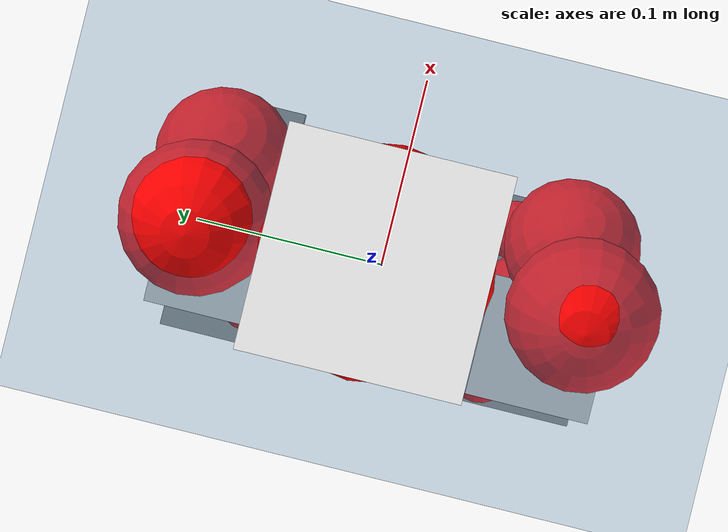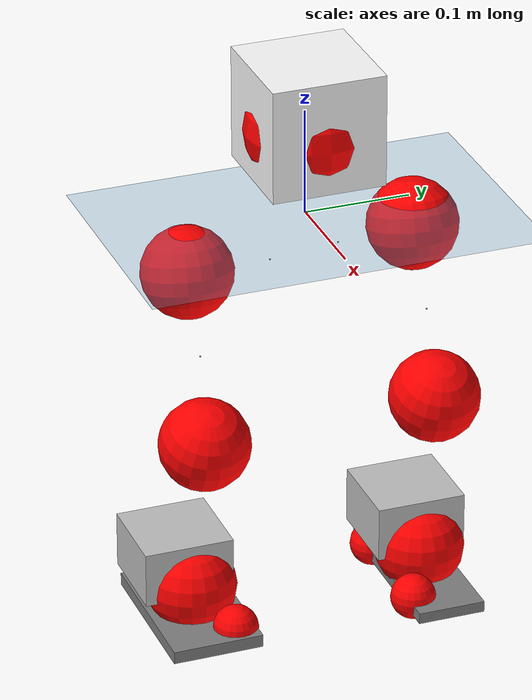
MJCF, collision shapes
<mujoco model="pi_12dof_release_v1">
  <compiler angle="radian" assetdir="assets" balanceinertia="true" inertiafromgeom="false"/>

  <option timestep="0.005" density="1.2" viscosity="2e-05"/>

  <size nkey="1"/>

  <visual>
    <quality shadowsize="8192"/>
    <map shadowclip="0.5"/>
  </visual>

  <default>
    <default class="/">
      <joint armature="0.01" damping="0.01" frictionloss="0.01"/>
      <geom contype="0" conaffinity="0" group="1" solref="-1000 -80"/>
      <site size="0.01 0.005 0.005" group="5"/>
      <general forcelimited="true" biastype="affine" gainprm="20" biasprm="0 -20 -0.5"/>
      <default class="foot">
        <geom size="0.0845 0.036 0.005" type="box" condim="6" group="4" priority="1" friction="0.9 0.2 0.2" solimp="0.015 1 0.005"/>
      </default>
      <default class="reward_collision_sphere">
        <geom group="5" rgba="1 0 0 1"/>
      </default>
    </default>
  </default>

  <asset>
    <texture type="skybox" colorspace="auto" name="//unnamed_texture_0" builtin="gradient" rgb1="0.95 0.95 0.95" rgb2="0.95 0.95 0.95" width="100" height="600"/>
    <texture type="2d" colorspace="auto" name="texplane" builtin="checker" rgb1="0.345 0.575 0.748" rgb2="0.345 0.575 0.748" markrgb="1 1 1" width="512" height="512"/>
    <material name="MatPlane" class="/" texture="texplane" texuniform="true" texrepeat="2 2" specular="0.9"/>
    <mesh name="baselink_1" class="/" file="baselink_1.STL"/>
    <mesh name="r_hip_pitch_link" class="/" file="r_hip_pitch_link.STL"/>
    <mesh name="r_hip_roll_link" class="/" file="r_hip_roll_link.STL"/>
    <mesh name="r_thigh_link" class="/" file="r_thigh_link.STL"/>
    <mesh name="r_calf_link" class="/" file="r_calf_link.STL"/>
    <mesh name="r_ankle_pitch_link" class="/" file="r_ankle_pitch_link.STL"/>
    <mesh name="r_ankle_roll_link" class="/" file="r_ankle_roll_link.STL"/>
    <mesh name="l_hip_pitch_link" class="/" file="l_hip_pitch_link.STL"/>
    <mesh name="l_hip_roll_link" class="/" file="l_hip_roll_link.STL"/>
    <mesh name="l_thigh_link" class="/" file="l_thigh_link.STL"/>
    <mesh name="l_calf_link" class="/" file="l_calf_link.STL"/>
    <mesh name="l_ankle_pitch_link" class="/" file="l_ankle_pitch_link.STL"/>
    <mesh name="l_ankle_roll_link" class="/" file="l_ankle_roll_link.STL"/>
  </asset>

  <worldbody>
    <geom name="floor" class="/" size="100 100 0.125" type="plane" group="0" material="MatPlane"/>
    <light name="toplight_shadow" class="/" pos="0 0 5" dir="0.0990148 0.0990148 -0.990148" type="directional" ambient="0.04 0.04 0.04" diffuse="0.55 0.55 0.55" specular="0.12 0.12 0.12"/>
    <light name="toplight_fill" class="/" pos="0 0 5" dir="0.0990148 0.0990148 -0.990148" type="directional" castshadow="false" ambient="0.04 0.04 0.04" diffuse="0.3 0.3 0.3" specular="0.08 0.08 0.08"/>
    <body name="trunk" pos="0.000728769 0.00279771 0.00187659" quat="1 -6.20646e-05 3.5896e-05 9.21801e-06">
      <inertial pos="0.00392221 0.0033848 0.0471779" quat="0.688203 0.0295055 0.0379215 0.723925" mass="2.69749" diaginertia="0.00271111 0.0297979 0.00897025"/>
      <joint name="//unnamed_joint_0" type="free"/>
      <geom name="//unnamed_geom_1" class="/" type="mesh" density="0" rgba="1 1 1 1" mesh="baselink_1"/>
      <geom name="//unnamed_geom_2" class="/" size="0.0535669 0.0535669 0.0535669" pos="0 0 0.0932019" type="box" rgba="1 1 1 1"/>
      <geom name="//unnamed_geom_3" class="reward_collision_sphere" size="0.0589236" pos="0 0 0.0815517"/>
      <site name="imu" class="/" pos="-0.0124776 -0.00226863 0.013916" size="0.0107134"/>
      <camera name="track" class="/" pos="0 -2.5478 0" quat="0.707107 0.707107 0 0" mode="trackcom"/>
      <camera name="ego_camera" class="/" pos="0.0581316 0 0.209704" quat="-0.5 -0.5 0.5 0.5"/>
      <body name="r_hip_pitch_link" pos="-0.00103448 -0.0363595 -0.0435915" quat="0.992224 0.000654316 -0.124453 -0.00146421">
        <inertial pos="-0.000564165 -0.0700796 -4.58619e-06" quat="-0.0284393 0.708618 -0.0279392 0.704465" mass="0.467716" diaginertia="3.03849e-05 0.000350112 0.000175229"/>
        <joint name="r_hip_pitch_joint" class="/" pos="0 0 0" axis="-0.00456884 -0.999988 0.00195442" stiffness="0.00332318" range="-1.76423 1.25491" armature="0.0108493" damping="0.00984942" frictionloss="0.00954634"/>
        <geom name="//unnamed_geom_4" class="/" type="mesh" density="0" rgba="0.75294 0.75294 0.75294 1" mesh="r_hip_pitch_link"/>
        <geom name="//unnamed_geom_5" class="/" size="0.000535669 0.000535669 0.000535669" type="box" rgba="0.75294 0.75294 0.75294 1"/>
        <body name="r_hip_roll_link" pos="0.000921791 -0.0790999 0.00177456" quat="1 -0.000888088 0.000435941 5.49595e-05">
          <inertial pos="-0.00325643 -0.000451689 -0.0717654" quat="0.718466 -0.0757676 -0.0714784 0.687719" mass="0.478641" diaginertia="9.72301e-05 0.000942778 0.000273307"/>
          <joint name="r_hip_roll_joint" class="/" pos="0 0 0" axis="-0.999978 -0.00597655 -0.00304358" stiffness="0.00899711" range="-0.12455 0.427979" armature="0.0115569" damping="0.0544909" frictionloss="0.009907"/>
          <geom name="//unnamed_geom_6" class="/" type="mesh" density="0" rgba="0.75294 0.75294 0.75294 1" mesh="r_hip_roll_link"/>
          <geom name="//unnamed_geom_7" class="/" size="0.000535669 0.000535669 0.000535669" type="box" rgba="0.75294 0.75294 0.75294 1"/>
          <geom name="//unnamed_geom_8" class="reward_collision_sphere" size="0.0428535"/>
          <body name="r_thigh_link" pos="-0.00136278 0.00513526 -0.0796299" quat="1 6.10493e-05 -1.9568e-05 -5.90573e-05">
            <inertial pos="-0.00123725 0.00113597 -0.0490722" quat="0.739272 0.673403 0.000847274 -0.00211269" mass="0.133624" diaginertia="3.57828e-05 0.000292843 0.000132316"/>
            <joint name="r_thigh_joint" class="/" pos="0 0 0" axis="0.0077397 -0.00137821 -0.999969" stiffness="0.00279502" range="-0.26439 0.587382" armature="0.0102691" damping="0.00879346" frictionloss="0.0105545"/>
            <geom name="//unnamed_geom_9" class="/" type="mesh" density="0" rgba="0.75294 0.75294 0.75294 1" mesh="r_thigh_link"/>
            <geom name="//unnamed_geom_10" class="/" size="0.000535669 0.000535669 0.000535669" type="box" rgba="0.75294 0.75294 0.75294 1"/>
            <body name="r_calf_link" pos="0.000287252 -0.00374839 -0.0816687" quat="0.947735 0.00031704 0.319057 4.63889e-05">
              <inertial pos="-0.00178914 0.000976983 -0.0791532" quat="0.999946 0.000882022 0.000422669 0.0103696" mass="1.07691" diaginertia="0.000983994 0.0130735 0.000368113"/>
              <joint name="r_calf_joint" class="/" pos="0 0 0" axis="-0.00248759 -0.999997 -7.53396e-05" range="-1.79076 0.647181" armature="0.00957714" damping="0.0035294" frictionloss="0.0108258"/>
              <geom name="//unnamed_geom_11" class="/" type="mesh" density="0" rgba="0.75294 0.75294 0.75294 1" mesh="r_calf_link"/>
              <geom name="//unnamed_geom_12" class="/" size="0.000535669 0.000535669 0.000535669" type="box" rgba="0.75294 0.75294 0.75294 1"/>
              <geom name="//unnamed_geom_13" class="reward_collision_sphere" size="0.0428535"/>
              <body name="r_ankle_pitch_link" pos="-0.00532294 -0.00657274 -0.164082" quat="0.980054 5.47205e-05 -0.198734 4.51744e-05">
                <inertial pos="0.00343551 0.0110386 -0.00216773" quat="0.0035112 0.705851 -0.00561133 0.708329" mass="0.201602" diaginertia="8.40432e-05 0.000713061 0.000241988"/>
                <joint name="r_ankle_pitch_joint" class="/" pos="0 0 0" axis="0.0270119 -0.999626 -0.00433382" stiffness="0.00789416" range="-1.29045 0.395474" armature="0.0113079" damping="0.00197826" frictionloss="0.00998198"/>
                <geom name="//unnamed_geom_14" class="/" type="mesh" density="0" rgba="0.75294 0.75294 0.75294 1" mesh="r_ankle_pitch_link"/>
                <geom name="//unnamed_geom_15" class="/" size="0.0417822 0.0428535 0.0267834" type="box" rgba="0.75294 0.75294 0.75294 1"/>
                <body name="r_ankle_roll_link" pos="0.0644758 0.00689654 0.0014187" quat="0.999998 -0.000407232 0.000562036 0.00190602">
                  <inertial pos="-0.0170297 -0.00047291 -0.0186153" quat="0.563347 0.430826 0.431272 0.557704" mass="0.655084" diaginertia="0.000326912 0.0034422 0.000623851"/>
                  <joint name="r_ankle_roll_joint" class="/" pos="0 0 0" axis="-0.999999 -0.00154164 0.000171455" range="-0.0283134 0.146358" armature="0.010829" damping="0" frictionloss="0.0106789"/>
                  <geom name="//unnamed_geom_16" class="/" type="mesh" density="0" rgba="0.75294 0.75294 0.75294 1" mesh="r_ankle_roll_link"/>
                  <geom name="//unnamed_geom_17" class="/" type="mesh" rgba="0.75294 0.75294 0.75294 1" mesh="r_ankle_roll_link"/>
                  <geom name="right_foot" class="foot" size="0.0756569 0.0433075 0.00602228" pos="-0.0395295 0 -0.051261"/>
                  <geom name="//unnamed_geom_19" class="reward_collision_sphere" size="0.0428535" pos="-0.0387544 0 -0.0233005"/>
                  <geom name="//unnamed_geom_20" class="reward_collision_sphere" size="0.0214268" pos="0.0116263 0.025478 -0.0466009"/>
                  <geom name="//unnamed_geom_21" class="reward_collision_sphere" size="0.0214268" pos="-0.0930106 0.025478 -0.0466009"/>
                  <site name="right_foot" class="foot" pos="-0.0395295 0 -0.051261" size="0.0107134"/>
                </body>
              </body>
            </body>
          </body>
        </body>
      </body>
      <body name="l_hip_pitch_link" pos="0.00118309 0.0283875 -0.0366112" quat="0.992214 -0.000757441 -0.124545 -0.000261494">
        <inertial pos="8.27654e-05 0.0727499 -0.000309929" quat="-0.0314011 0.701405 0.0276931 0.711532" mass="0.496333" diaginertia="3.59793e-05 0.000357799 0.000220335"/>
        <joint name="l_hip_pitch_joint" class="/" pos="0 0 0" axis="-0.00282155 0.99999 -0.003344" range="-1.25886 1.75535" armature="0.0101182" damping="0.0218548" frictionloss="0.00988478"/>
        <geom name="//unnamed_geom_22" class="/" type="mesh" density="0" rgba="0.75294 0.75294 0.75294 1" mesh="l_hip_pitch_link"/>
        <geom name="//unnamed_geom_23" class="/" size="0.000535669 0.000535669 0.000535669" type="box" rgba="0.75294 0.75294 0.75294 1"/>
        <body name="l_hip_roll_link" pos="0.000601366 0.0724606 0.00623559" quat="1 -0.00024027 0.000594449 -2.69242e-05">
          <inertial pos="0.00218117 -0.00178841 -0.0652945" quat="0.698713 -0.0744163 -0.0753816 0.707516" mass="0.443686" diaginertia="9.22739e-05 0.000957869 0.000273793"/>
          <joint name="l_hip_roll_joint" class="/" pos="0 0 0" axis="-0.99988 0.0131139 0.00820767" range="-0.392142 0.135256" armature="0.00889993" damping="0.0131972" frictionloss="0.0114233"/>
          <geom name="//unnamed_geom_24" class="/" type="mesh" density="0" rgba="0.75294 0.75294 0.75294 1" mesh="l_hip_roll_link"/>
          <geom name="//unnamed_geom_25" class="/" size="0.000535669 0.000535669 0.000535669" type="box" rgba="0.75294 0.75294 0.75294 1"/>
          <geom name="//unnamed_geom_26" class="reward_collision_sphere" size="0.0428535"/>
          <body name="l_thigh_link" pos="0.000365968 0.00678164 -0.0816512" quat="1 -0.000822608 0.00020581 -1.52166e-05">
            <inertial pos="-0.000157918 -0.00192499 -0.0585669" quat="0.673297 0.739351 0.00241675 -0.00506554" mass="0.135617" diaginertia="3.28057e-05 0.000309309 0.000122387"/>
            <joint name="l_thigh_joint" class="/" pos="0 0 0" axis="0.00148621 0.00125051 -0.999998" range="-0.558769 0.290416" armature="0.0113288" damping="0" frictionloss="0.0110213"/>
            <geom name="//unnamed_geom_27" class="/" type="mesh" density="0" rgba="0.75294 0.75294 0.75294 1" mesh="l_thigh_link"/>
            <geom name="//unnamed_geom_28" class="/" size="0.000535669 0.000535669 0.000535669" type="box" rgba="0.75294 0.75294 0.75294 1"/>
            <body name="l_calf_link" pos="-0.000196199 0.00102893 -0.0824437" quat="0.947699 -9.53536e-05 0.31916 0.00198305">
              <inertial pos="0.0023115 0.00101058 -0.0798384" quat="0.999947 0.00566696 0.00840377 -0.0016491" mass="1.00731" diaginertia="0.000947744 0.0118585 0.000348501"/>
              <joint name="l_calf_joint" class="/" pos="0 0 0" axis="0.00542792 0.999983 -0.00221737" range="-0.604885 1.63096" armature="0.0117313" damping="0.0177275" frictionloss="0.0115258"/>
              <geom name="//unnamed_geom_29" class="/" type="mesh" density="0" rgba="0.75294 0.75294 0.75294 1" mesh="l_calf_link"/>
              <geom name="//unnamed_geom_30" class="/" size="0.000535669 0.000535669 0.000535669" type="box" rgba="0.75294 0.75294 0.75294 1"/>
              <geom name="//unnamed_geom_31" class="reward_collision_sphere" size="0.0428535"/>
              <body name="l_ankle_pitch_link" pos="0.00140121 -0.00173615 -0.163293" quat="0.980132 0.000138035 -0.198332 -0.00228815">
                <inertial pos="0.00439969 0.00362796 -0.00059954" quat="-0.00794308 0.709334 0.0116311 0.704732" mass="0.221452" diaginertia="8.88549e-05 0.000757635 0.000258824"/>
                <joint name="l_ankle_pitch_joint" class="/" pos="0 0 0" axis="0.000182949 1 -1.989e-05" range="-0.446068 1.28042" armature="0.0117846" damping="0.0186733" frictionloss="0.0105849"/>
                <geom name="//unnamed_geom_32" class="/" type="mesh" density="0" rgba="0.75294 0.75294 0.75294 1" mesh="l_ankle_pitch_link"/>
                <geom name="//unnamed_geom_33" class="/" size="0.0417822 0.0428535 0.0267834" type="box" rgba="0.75294 0.75294 0.75294 1"/>
                <body name="l_ankle_roll_link" pos="0.0656575 0.00362253 -0.00274112" quat="1 -9.45816e-05 -0.000151051 0.000102057">
                  <inertial pos="-0.0256078 0.000256017 -0.0188368" quat="0.564945 0.429883 0.432546 0.555825" mass="0.624552" diaginertia="0.000296474 0.00336961 0.000624302"/>
                  <joint name="l_ankle_roll_joint" class="/" pos="0 0 0" axis="-0.999482 -0.0106858 -0.0303454" range="-0.279141 0.202734" armature="0.00810073" damping="0" frictionloss="0.0128026"/>
                  <geom name="//unnamed_geom_34" class="/" type="mesh" density="0" rgba="0.75294 0.75294 0.75294 1" mesh="l_ankle_roll_link"/>
                  <geom name="//unnamed_geom_35" class="/" type="mesh" rgba="0.75294 0.75294 0.75294 1" mesh="l_ankle_roll_link"/>
                  <geom name="left_foot" class="foot" size="0.084603 0.0324074 0.00531754" pos="-0.0395295 0 -0.051261"/>
                  <geom name="//unnamed_geom_37" class="reward_collision_sphere" size="0.0428535" pos="-0.0387544 0 -0.0233005"/>
                  <geom name="//unnamed_geom_38" class="reward_collision_sphere" size="0.0214268" pos="0.0116263 -0.025478 -0.0466009"/>
                  <geom name="//unnamed_geom_39" class="reward_collision_sphere" size="0.0214268" pos="-0.0930106 -0.025478 -0.0466009"/>
                  <site name="left_foot" class="foot" pos="-0.0395295 0 -0.051261" size="0.0107134"/>
                </body>
              </body>
            </body>
          </body>
        </body>
      </body>
    </body>
  </worldbody>

  <contact>
    <pair class="/" geom1="floor" geom2="right_foot" name="//unnamed_contact_1"/>
    <pair class="/" geom1="floor" geom2="left_foot" name="//unnamed_contact_0"/>
  </contact>

  <actuator>
    <general name="r_hip_pitch_joint" class="/" joint="r_hip_pitch_joint" forcerange="-20.8032 20.8032" gainprm="21.8288" biasprm="0 -21.8288 -0.522922"/>
    <general name="r_hip_roll_joint" class="/" joint="r_hip_roll_joint" forcerange="-22.0832 22.0832" gainprm="21.8288" biasprm="0 -21.8288 -0.522922"/>
    <general name="r_thigh_joint" class="/" joint="r_thigh_joint" forcerange="-21.172 21.172" gainprm="21.8288" biasprm="0 -21.8288 -0.522922"/>
    <general name="r_calf_joint" class="/" joint="r_calf_joint" forcerange="-26.1476 26.1476" gainprm="21.8288" biasprm="0 -21.8288 -0.522922"/>
    <general name="r_ankle_pitch_joint" class="/" joint="r_ankle_pitch_joint" forcerange="-18.0292 18.0292" gainprm="21.8288" biasprm="0 -21.8288 -0.522922"/>
    <general name="r_ankle_roll_joint" class="/" joint="r_ankle_roll_joint" forcerange="-17.9626 17.9626" gainprm="21.8288" biasprm="0 -21.8288 -0.522922"/>
    <general name="l_hip_pitch_joint" class="/" joint="l_hip_pitch_joint" forcerange="-16.6673 16.6673" gainprm="21.8288" biasprm="0 -21.8288 -0.522922"/>
    <general name="l_hip_roll_joint" class="/" joint="l_hip_roll_joint" forcerange="-23.8549 23.8549" gainprm="21.8288" biasprm="0 -21.8288 -0.522922"/>
    <general name="l_thigh_joint" class="/" joint="l_thigh_joint" forcerange="-20.9095 20.9095" gainprm="21.8288" biasprm="0 -21.8288 -0.522922"/>
    <general name="l_calf_joint" class="/" joint="l_calf_joint" forcerange="-18.0025 18.0025" gainprm="21.8288" biasprm="0 -21.8288 -0.522922"/>
    <general name="l_ankle_pitch_joint" class="/" joint="l_ankle_pitch_joint" forcerange="-17.9783 17.9783" gainprm="21.8288" biasprm="0 -21.8288 -0.522922"/>
    <general name="l_ankle_roll_joint" class="/" joint="l_ankle_roll_joint" forcerange="-21.2907 21.2907" gainprm="21.8288" biasprm="0 -21.8288 -0.522922"/>
  </actuator>

  <sensor>
    <gyro site="imu" name="imu_angular_velocity"/>
    <velocimeter site="imu" name="imu_linear_velocity"/>
    <framelinvel objtype="site" objname="left_foot" name="left_foot_global_linear_velocity"/>
    <framelinvel objtype="site" objname="right_foot" name="right_foot_global_linear_velocity"/>
  </sensor>

  <keyframe>
    <key name="home" qpos="0 0 0.291 1 0 0 0 0.4 0 0 -0.8 0.4 0 -0.4 0 0 0.8 -0.4 0"/>
  </keyframe>
</mujoco>
